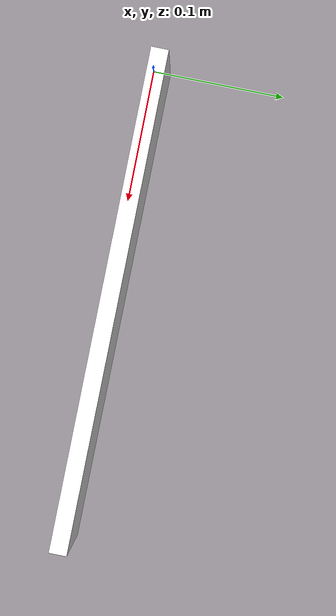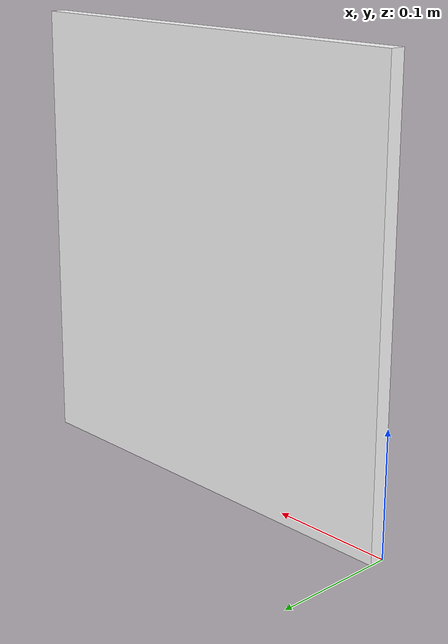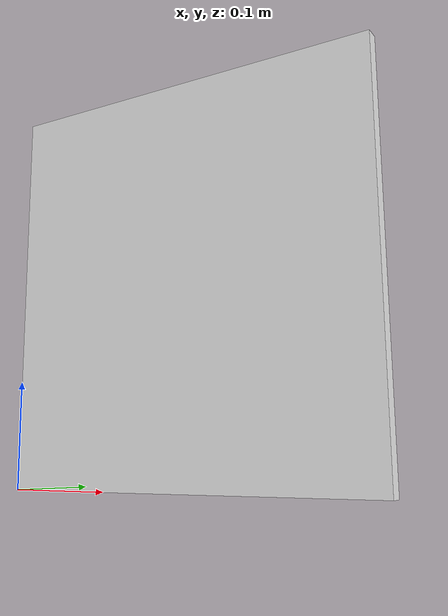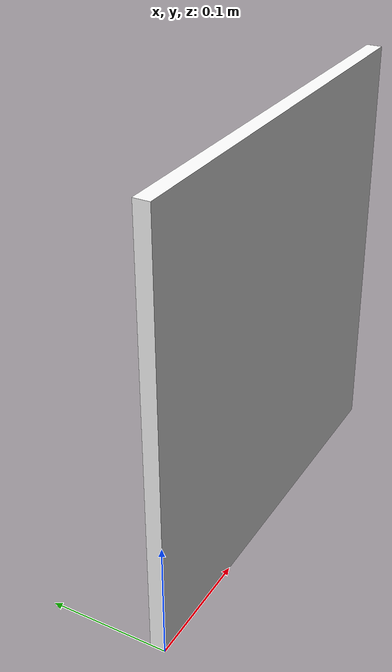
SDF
<?xml version="1.0" ?>
<sdf version="1.5">
  <model name="washroom_sign">
    <static>true</static>
    <link name="washroom_sign_link">
        <collision name="washroom_sign_collision">
         <geometry>
            <mesh>
                <uri>model://washroom_sign/meshes/model.dae</uri>
                <scale>1.0 1.0 1.0</scale>
            </mesh>
        </geometry>
      </collision>

      <visual name="washroom_sign_mesh">
        <cast_shadows>false</cast_shadows>
        <geometry>
            <mesh>
                <uri>model://washroom_sign/meshes/model.dae</uri>
                <scale>1.0 1.0 1.0</scale>
            </mesh>
        </geometry>
      </visual>
    </link>
  </model>
</sdf>
